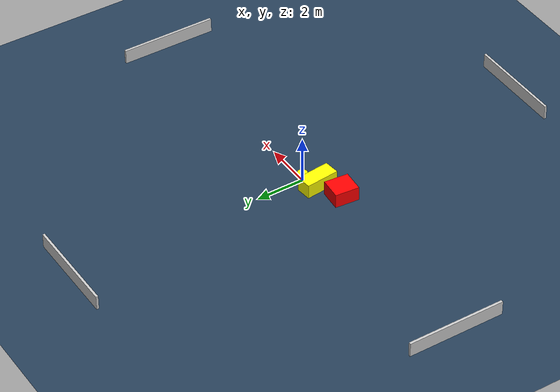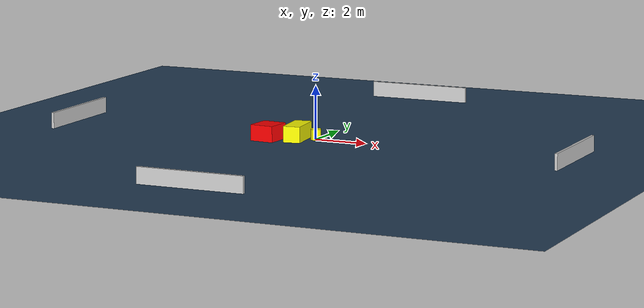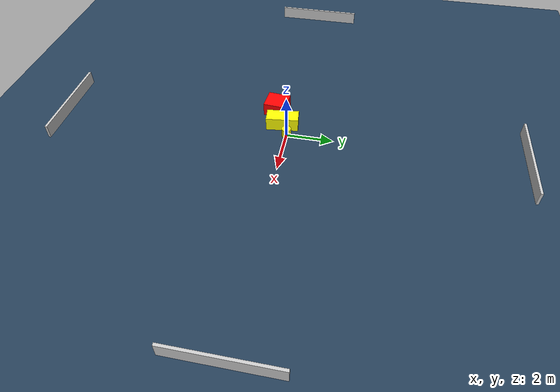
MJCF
<?xml version="1.0" ?>
<mujoco model="generated_environment">
  <option timestep="0.01" integrator="RK4" cone="elliptic"/>
  <default>
    <geom density="1"/>
  </default>
  <asset>
    <texture builtin="gradient" height="3072" name="skybox" rgb1="0.3 0.5 0.7" rgb2="0 0 0" type="skybox" width="512"/>
    <texture builtin="checker" height="300" name="groundplane" rgb1="0.2 0.3 0.4" rgb2="0.1 0.2 0.3" type="2d" width="300"/>
    <material name="groundplane" reflectance="0.2" texrepeat="5 5" texture="groundplane"/>
  </asset>
  <worldbody>
    <light dir="0 0 -1" directional="true" pos="0 0 1.5"/>
    <geom condim="3" friction="0.5 0.005 0.001" material="groundplane" name="floor" pos="0 0 0" size="0 0 0.05" type="plane"/>
    <body name="walls">
      <geom name="wall_1" condim="4" pos="-10.0 0.0 0.3" rgba="0.800000011920929 0.800000011920929 0.800000011920929 1.0" size="0.05 2.0 0.3" type="box"/>
      <geom name="wall_2" condim="4" pos="10.0 0.0 0.3" rgba="0.800000011920929 0.800000011920929 0.800000011920929 1.0" size="0.05 2.0 0.3" type="box"/>
      <geom name="wall_3" condim="4" pos="0.0 -10.0 0.3" rgba="0.800000011920929 0.800000011920929 0.800000011920929 1.0" size="2.0 0.05 0.3" type="box"/>
      <geom name="wall_4" condim="4" pos="0.0 10.0 0.3" rgba="0.800000011920929 0.800000011920929 0.800000011920929 1.0" size="2.0 0.05 0.3" type="box"/>
    </body>
    <body name="robot">
      <joint name="joint_x" type="slide" pos="0 0 0" axis="1 0 0"/>
      <joint name="joint_y" type="slide" pos="0 0 0" axis="0 1 0"/>
      <geom name="robot" type="cylinder" pos="0.0 0.0 0.2" size="0.2 0.2 0.0" mass="5.0" friction="1.0 0.005 0.0001" condim="4" rgba="1.0 1.0 0.0 1.0"/>
    </body>
    <body name="obstacle_1_movable">
      <geom name="obstacle_1_movable" condim="4" pos="-0.6099197427745735 -0.2863076590762911 0.3" euler="0 0 275.9658089201433" friction="0.0 0.005 0.001" rgba="1.0 1.0 0.0 1.0" size="0.6957552901111899 0.31858306128627967 0.3" type="box" mass="0.1"/>
      <joint type="free"/>
    </body>
    <body name="obstacle_2_static">
      <geom name="obstacle_2_static" condim="4" pos="-1.5966391129177142 -0.7239878505573033 0.3" euler="0 0 265.19148214336315" friction="0.0 0.005 0.001" rgba="1.0 0.0 0.0 1.0" size="0.497765841797352 0.45014195318729033 0.3" type="box"/>
    </body>
  </worldbody>
  <actuator>
    <motor name="actuator_x" joint="joint_x" gear="1" ctrlrange="-1 1"/>
    <motor name="actuator_y" joint="joint_y" gear="1" ctrlrange="-1 1"/>
  </actuator>
</mujoco>
